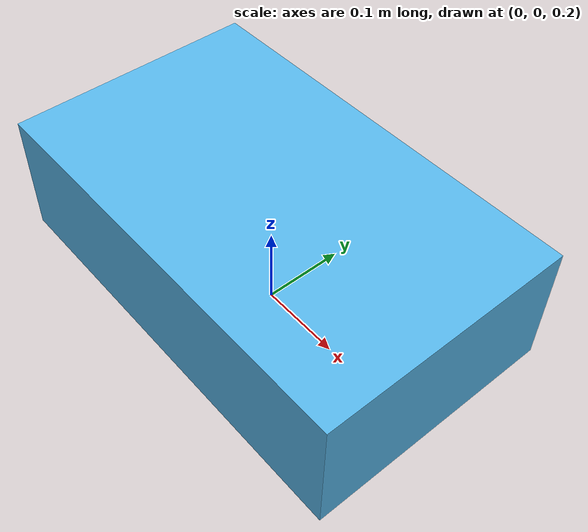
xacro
<?xml version="1.0" ?>
<robot name="weederbot" xmlns:xacro="http://www.ros.org/wiki/xacro">

    <xacro:include filename="$(find weederbot_description)/urdf/macros.urdf.xacro" />

    <link name="base_link"/>

    <joint name="base_to_chassis" type="fixed">
        <parent link="base_link"/>
        <child link="chassis"/>
        <origin xyz="0 0 0.3"/>
    </joint>

    <box_link name="chassis" mass="1.0" sx="0.5" sy="0.3" sz="0.15">
        <origin xyz="0 0 0"/>
    </box_link>

</robot>

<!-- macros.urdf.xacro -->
<robot name="macros" xmlns:xacro="http://www.ros.org/wiki/xacro">

    <xacro:macro name="box_link" params="name sx sy sz mass:=0.1 *origin">
        <link name="${name}">
            <collision>
                <xacro:insert_block name="origin"/>
                <geometry>
                    <box size="${sx} ${sy} ${sz}"/>
                </geometry>
            </collision>
            <visual>
                <xacro:insert_block name="origin"/>
                <geometry>
                    <box size="${sx} ${sy} ${sz}"/>
                </geometry>
            </visual>
            <inertial>
                <mass value="${mass}" />
                <xacro:insert_block name="origin"/>
                <inertia ixx="${(1/12)*mass*(sz*sz+sy*sy)}" ixy="0.0" ixz="0.0"
                         iyy="${(1/12)*mass*(sz*sz+sx*sx)}" iyz="0.0"
                         izz="${(1/12)*mass*(sy*sy+sx*sx)}" />
            </inertial>
        </link>
    </xacro:macro>

    <xacro:macro name="cylinder_link" params="name r l mass:=0.1 *origin">
        <link name="${name}">
            <collision>
                <xacro:insert_block name="origin"/>
                <geometry>
                    <cylinder radius="${r}" length="${l}"/>
                </geometry>
            </collision>
            <visual>
                <xacro:insert_block name="origin"/>
                <geometry>
                    <cylinder radius="${r}" length="${l}"/>
                </geometry>
            </visual>
            <inertial>
                <mass value="${mass}" />
                <xacro:insert_block name="origin"/>
                <inertia ixx="${(1/12)*mass*(3*r*r+l*l)}" ixy="0.0" ixz="0.0"
                         iyy="${(1/12)*mass*(3*r*r+l*l)}" iyz="0.0"
                         izz="${(1/2)*mass*r*r}" />
            </inertial>
        </link>
    </xacro:macro>

    <xacro:macro name="sphere_link" params="name r mass:=0.1 *origin">
        <link name="${name}">
            <collision>
                <xacro:insert_block name="origin"/>
                <geometry>
                    <sphere radius="${r}"/>
                </geometry>
            </collision>
            <visual>
                <xacro:insert_block name="origin"/>
                <geometry>
                    <sphere radius="${r}"/>
                </geometry>
            </visual>
            <inertial>
                <mass value="${mass}" />
                <xacro:insert_block name="origin"/>
                <inertia ixx="${(2/3)*mass*r*r}" ixy="0.0" ixz="0.0"
                         iyy="${(2/3)*mass*r*r}" iyz="0.0"
                         izz="${(2/3)*mass*r*r}" />
            </inertial>
        </link>
    </xacro:macro>

    <xacro:macro name="sticky_material" params="link">
        <gazebo reference="${link}">
            <mu1>100.0</mu1>
            <mu2>100.0</mu2>
            <kp>500000.0</kp>
            <kd>10.0</kd>
            <minDepth>0.001</minDepth>
            <maxVel>10.0</maxVel>
            <fdir1>0 1 0</fdir1>
            <material>Gazebo/FlatBlack</material>
        </gazebo>
    </xacro:macro>

</robot>
